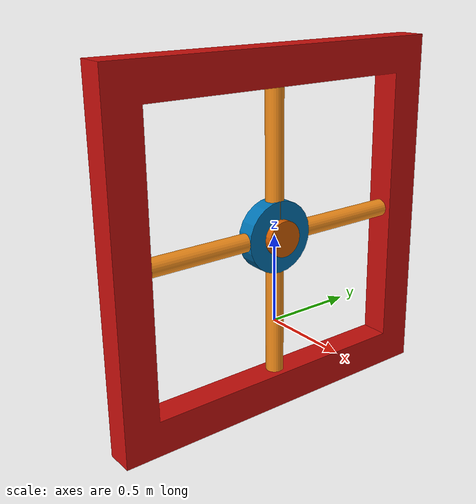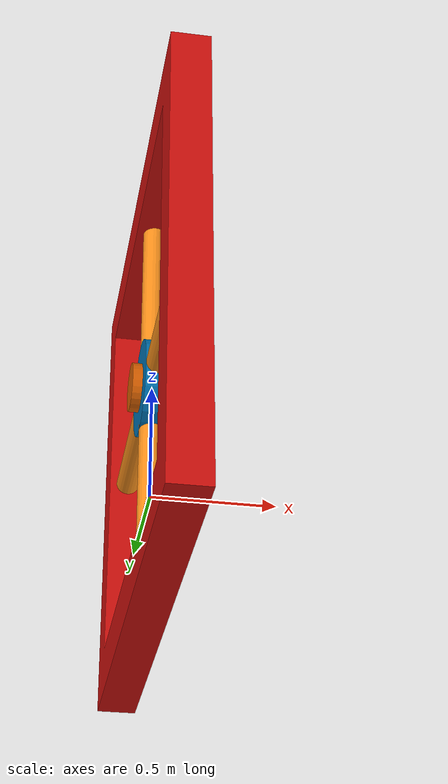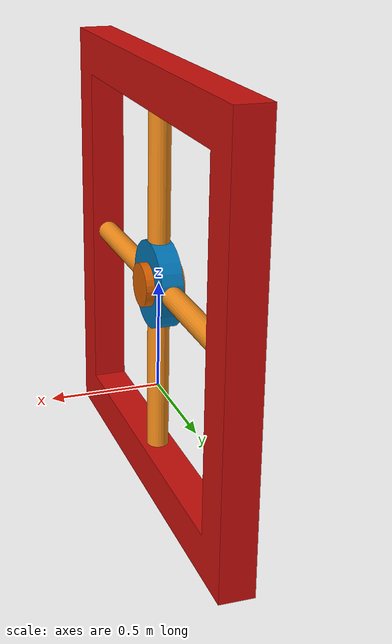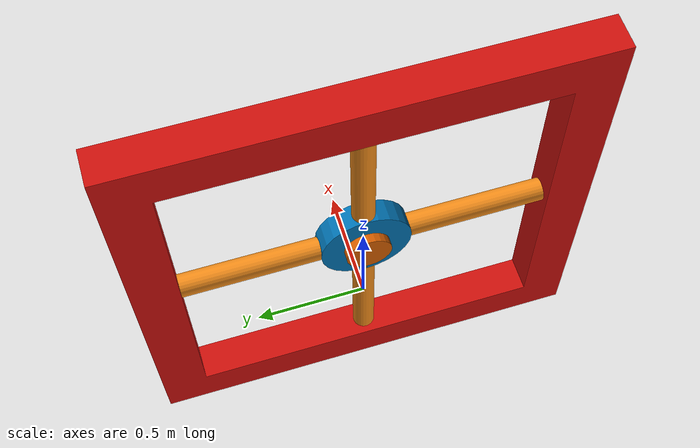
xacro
<?xml version="1.0" ?>
<robot name="push_robot" xmlns:xacro="http://ros.org/wiki/xacro">
  <xacro:include filename="$(find ssabot)/urdf/push_robot.gazebo.xacro" />
  <material name="black">
    <color rgba="0.0 0.0 0.0 1.0"/>
  </material>

  <link name="world"/>

  <joint name="base_joint" type="fixed">
    <parent link="world"/>
    <child link="base_link" />
    <origin xyz="0 0 -0.5" rpy="0 0 0"/>
  </joint>

  <link name="base_link">
    <visual>
      <origin xyz="0 0 0" rpy="0 0 1.57"/>
      <geometry>
        <mesh filename="package://ssabot/meshes/wall.dae" scale="1 1 1"/>
      </geometry>
    </visual>

    <collision>
      <origin xyz="0 0 0.2" rpy="0 0 1.57"/>
      <geometry>
        <mesh filename="package://ssabot/meshes/wall.dae" scale="1 1 1"/>
      </geometry>
    </collision>

    <inertial>
      <origin xyz="0 0 0" rpy="0 0 0"/>
      <mass value="1.3729096e+02"/>
      <inertia ixx="8.7002718e-03" ixy="-4.7576583e-05" ixz="1.1160499e-04"
               iyy="8.6195418e-03" iyz="-3.5422299e-06"
               izz="1.4612727e-02" />
    </inertial>
  </link>

   <joint name="virtual_joint1" type="prismatic">
    <parent link="base_link"/>
    <child link="virtual_link1"/>
    <origin xyz="0 0 1" rpy="0 0 0"/>
    <axis xyz="0 1 0"/>
    <limit effort="0.185" lower="-1" upper="1" velocity="0.001"/>
  </joint>

  <link name="virtual_link1">
    <visual>
      <origin xyz="0 0 0" rpy="0 0 0"/>
      <geometry>
        <cylinder length="1.8" radius="0.05"/>
      </geometry>
    </visual>

    <inertial>
      <origin xyz="0 0 0" rpy="0 0 0"/>
      <mass value="1.3729096e-05"/>
      <inertia ixx="8.7002718e-03" ixy="-4.7576583e-05" ixz="1.1160499e-04"
               iyy="8.6195418e-03" iyz="-3.5422299e-06"
               izz="1.4612727e-02" />
    </inertial>
  </link>

  <joint name="virtual_joint2" type="prismatic">
    <parent link="base_link"/>
    <child link="virtual_link2"/>
    <origin xyz="0 0 1" rpy="0 0 0"/>
    <axis xyz="0 0 1"/>
    <limit effort="0.03" lower="-0.5" upper="0.5" velocity="0.0001"/>
  </joint>

  <link name="virtual_link2">
    <visual>
      <origin xyz="0 0 0" rpy="-1.57 0 0"/>
      <geometry>
        <cylinder length="1.8" radius="0.05"/>
      </geometry>
    </visual>

    <inertial>
      <origin xyz="0 0 0" rpy="-1.57 0 0"/>
      <mass value="1.3729096e-05"/>
      <inertia ixx="8.7002718e-03" ixy="-4.7576583e-05" ixz="1.1160499e-04"
               iyy="8.6195418e-03" iyz="-3.5422299e-06"
               izz="1.4612727e-02" />
    </inertial>
  </link>

  <joint name="push_joint1" type="prismatic">
    <parent link="virtual_link1"/>
    <child link="push_link1"/>
    <origin xyz="0 0 0" rpy="0 0 0"/>
    <axis xyz="0 0 1"/>
    <limit effort="0.03" lower="-0.5" upper="0.5" velocity="0.0001"/>
  </joint>

  <link name="push_link1">
    <visual>
      <origin xyz="0 0 0" rpy="0 1.57 0"/>
      <geometry>
        <cylinder length="0.1" radius="0.2"/>
      </geometry>
    </visual>

    <inertial>
      <origin xyz="0 0 0" rpy="0 0 0"/>
      <mass value="1.3729096e-05"/>
      <inertia ixx="8.7002718e-03" ixy="-4.7576583e-05" ixz="1.1160499e-04"
               iyy="8.6195418e-03" iyz="-3.5422299e-06"
               izz="1.4612727e-02" />
    </inertial>
  </link>

  <joint name="push_joint2" type="prismatic">
    <parent link="push_link1"/>
    <child link="push_link2"/>
    <origin xyz="0 0 0" rpy="0 0 0"/>
    <axis xyz="1 0 0"/>
    <limit effort="50" lower="-1" upper="1" velocity="0.01"/>
  </joint>

  <link name="push_link2">
    <visual>
      <origin xyz="0 0 0" rpy="0 1.57 0"/>
      <geometry>
        <cylinder length="0.18" radius="0.1"/>
      </geometry>
    </visual>

    <collision>
      <origin xyz="0 0 0" rpy="0 1.57 0"/>
      <geometry>
        <cylinder length="0.18" radius="0.15"/>
      </geometry>
    </collision>

    <inertial>
      <origin xyz="0 0 0" rpy="0 0 0"/>
      <mass value="1.3729096e-05"/>
      <inertia ixx="8.7002718e-03" ixy="-4.7576583e-05" ixz="1.1160499e-04"
               iyy="8.6195418e-03" iyz="-3.5422299e-06"
               izz="1.4612727e-02" />
    </inertial>
  </link>

</robot>
